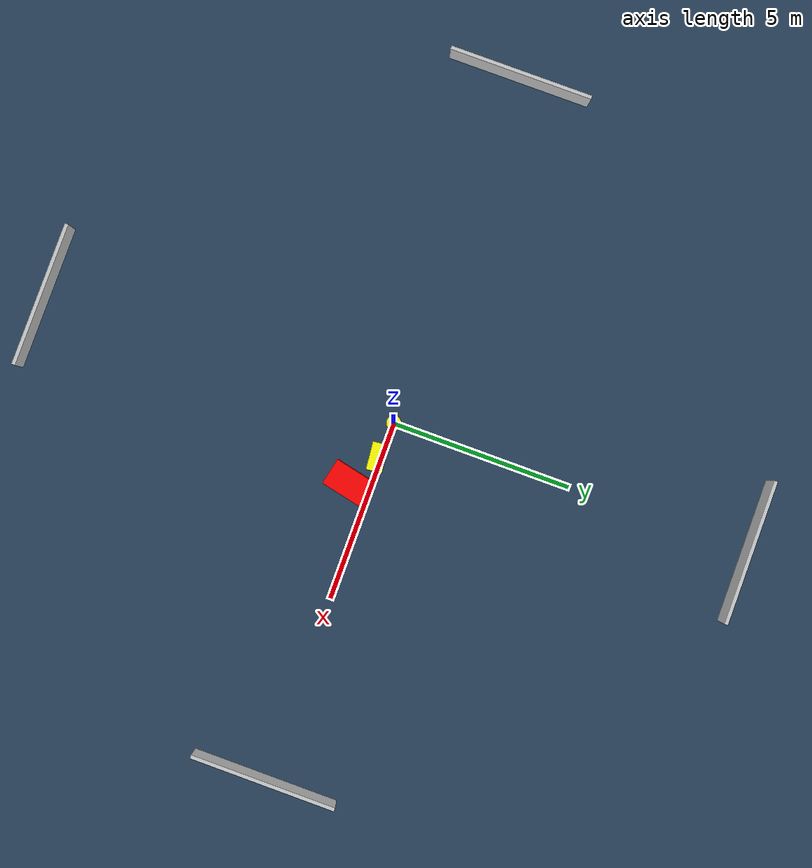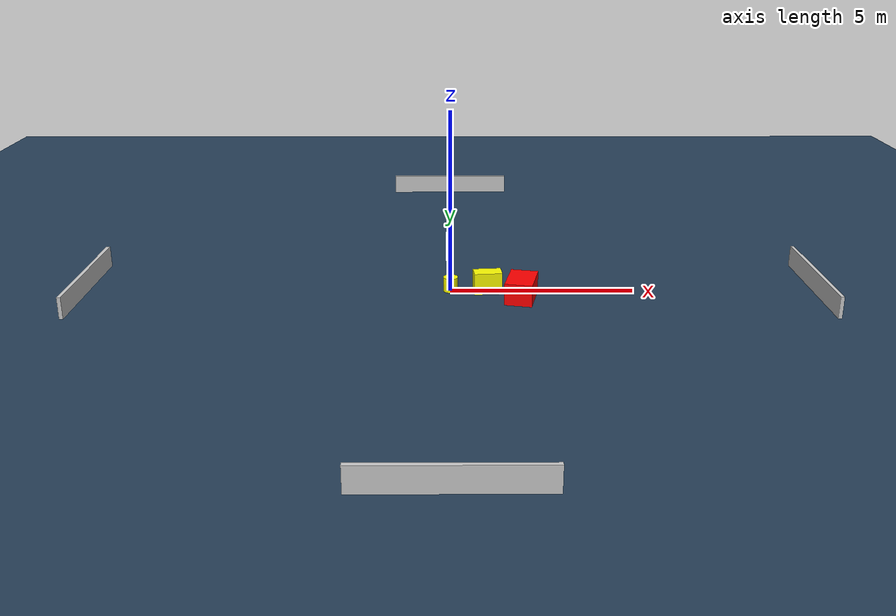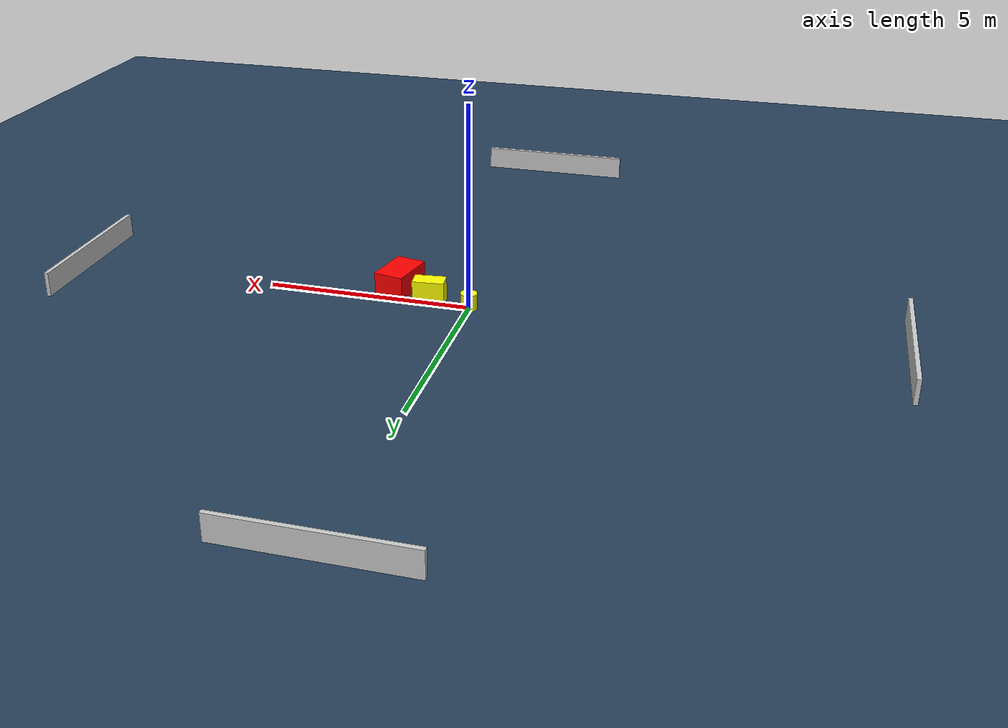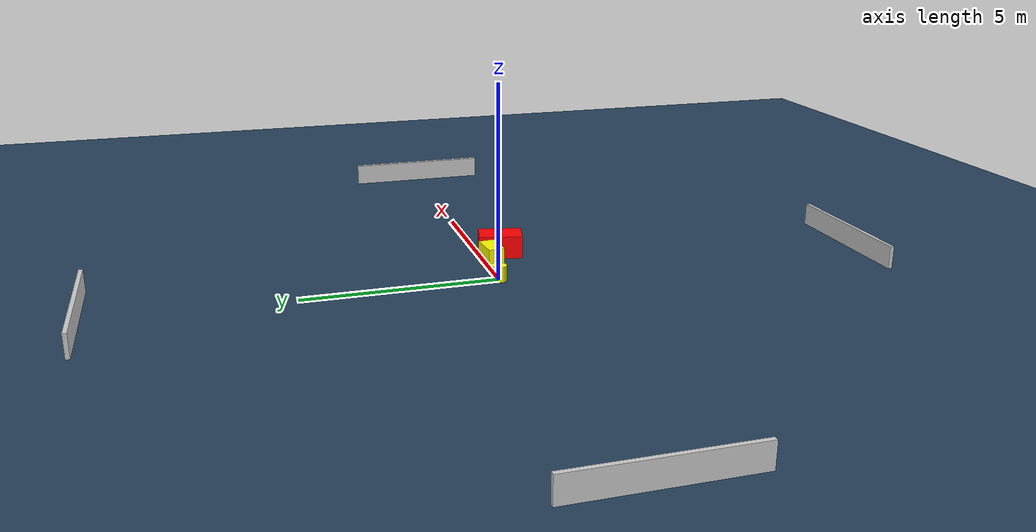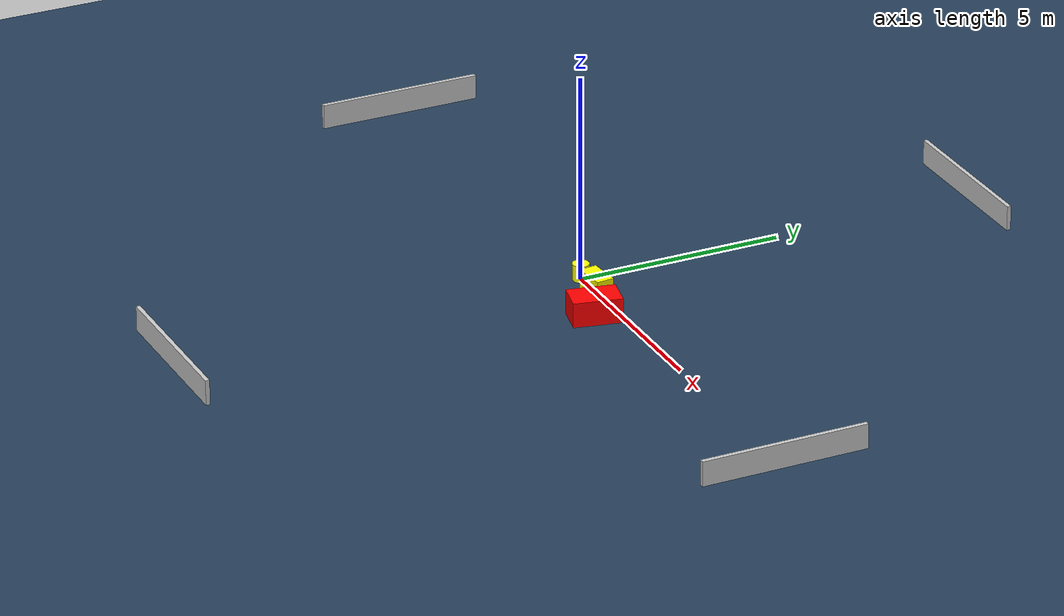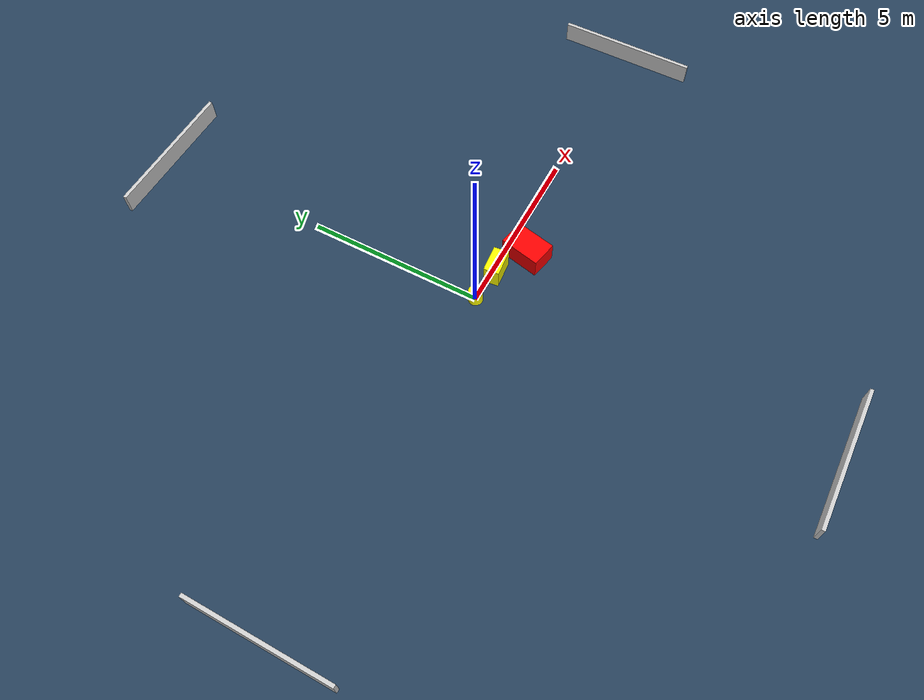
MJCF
<?xml version="1.0" ?>
<mujoco model="generated_environment">
  <option timestep="0.01" integrator="RK4" cone="elliptic"/>
  <default>
    <geom density="1"/>
  </default>
  <asset>
    <texture builtin="gradient" height="3072" name="skybox" rgb1="0.3 0.5 0.7" rgb2="0 0 0" type="skybox" width="512"/>
    <texture builtin="checker" height="300" name="groundplane" rgb1="0.2 0.3 0.4" rgb2="0.1 0.2 0.3" type="2d" width="300"/>
    <material name="groundplane" reflectance="0.2" texrepeat="5 5" texture="groundplane"/>
  </asset>
  <worldbody>
    <light dir="0 0 -1" directional="true" pos="0 0 1.5"/>
    <geom condim="3" friction="0.5 0.005 0.001" material="groundplane" name="floor" pos="0 0 0" size="0 0 0.05" type="plane"/>
    <body name="walls">
      <geom name="wall_1" condim="4" pos="-10.0 0.0 0.3" rgba="0.800000011920929 0.800000011920929 0.800000011920929 1.0" size="0.05 2.0 0.3" type="box"/>
      <geom name="wall_2" condim="4" pos="10.0 0.0 0.3" rgba="0.800000011920929 0.800000011920929 0.800000011920929 1.0" size="0.05 2.0 0.3" type="box"/>
      <geom name="wall_3" condim="4" pos="0.0 -10.0 0.3" rgba="0.800000011920929 0.800000011920929 0.800000011920929 1.0" size="2.0 0.05 0.3" type="box"/>
      <geom name="wall_4" condim="4" pos="0.0 10.0 0.3" rgba="0.800000011920929 0.800000011920929 0.800000011920929 1.0" size="2.0 0.05 0.3" type="box"/>
    </body>
    <body name="robot">
      <joint name="joint_x" type="slide" pos="0 0 0" axis="1 0 0"/>
      <joint name="joint_y" type="slide" pos="0 0 0" axis="0 1 0"/>
      <geom name="robot" type="cylinder" pos="0.0 0.0 0.2" size="0.2 0.2 0.0" mass="5.0" friction="1.0 0.005 0.0001" condim="4" rgba="1.0 1.0 0.0 1.0"/>
    </body>
    <body name="obstacle_1_movable">
      <geom name="obstacle_1_movable" condim="4" pos="1.0050814689120826 -0.09375504643646328 0.3" euler="0 0 275.55752125356236" friction="0.0 0.005 0.001" rgba="1.0 1.0 0.0 1.0" size="0.21446291716522273 0.3819467632262062 0.3" type="box" mass="0.1"/>
      <joint type="free"/>
    </body>
    <body name="obstacle_2_static">
      <geom name="obstacle_2_static" condim="4" pos="1.8993093836317951 -0.5820113291228979 0.3" euler="0 0 347.6177990111344" friction="0.0 0.005 0.001" rgba="1.0 0.0 0.0 1.0" size="0.37099249274338875 0.575367808267791 0.3" type="box"/>
    </body>
  </worldbody>
  <actuator>
    <motor name="actuator_x" joint="joint_x" gear="1" ctrlrange="-1 1"/>
    <motor name="actuator_y" joint="joint_y" gear="1" ctrlrange="-1 1"/>
  </actuator>
</mujoco>
